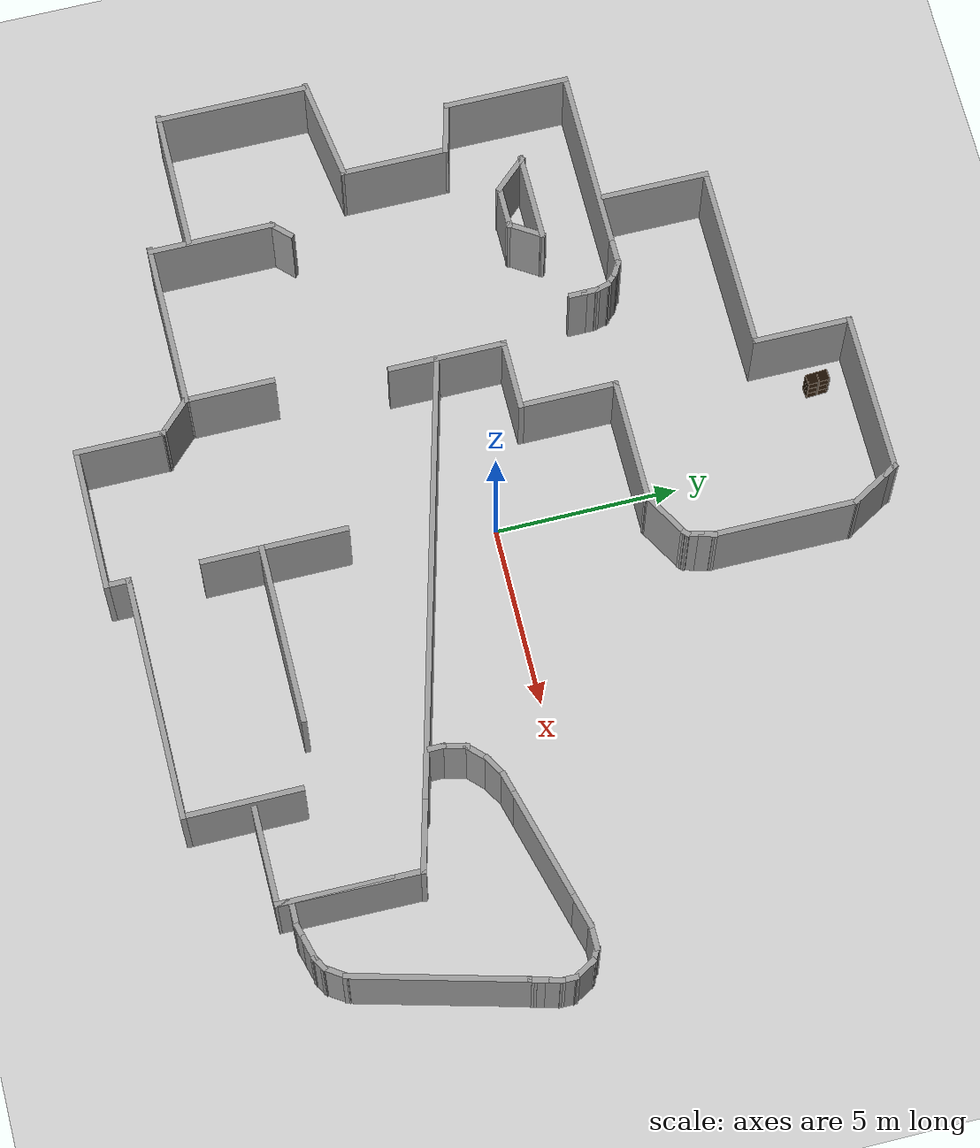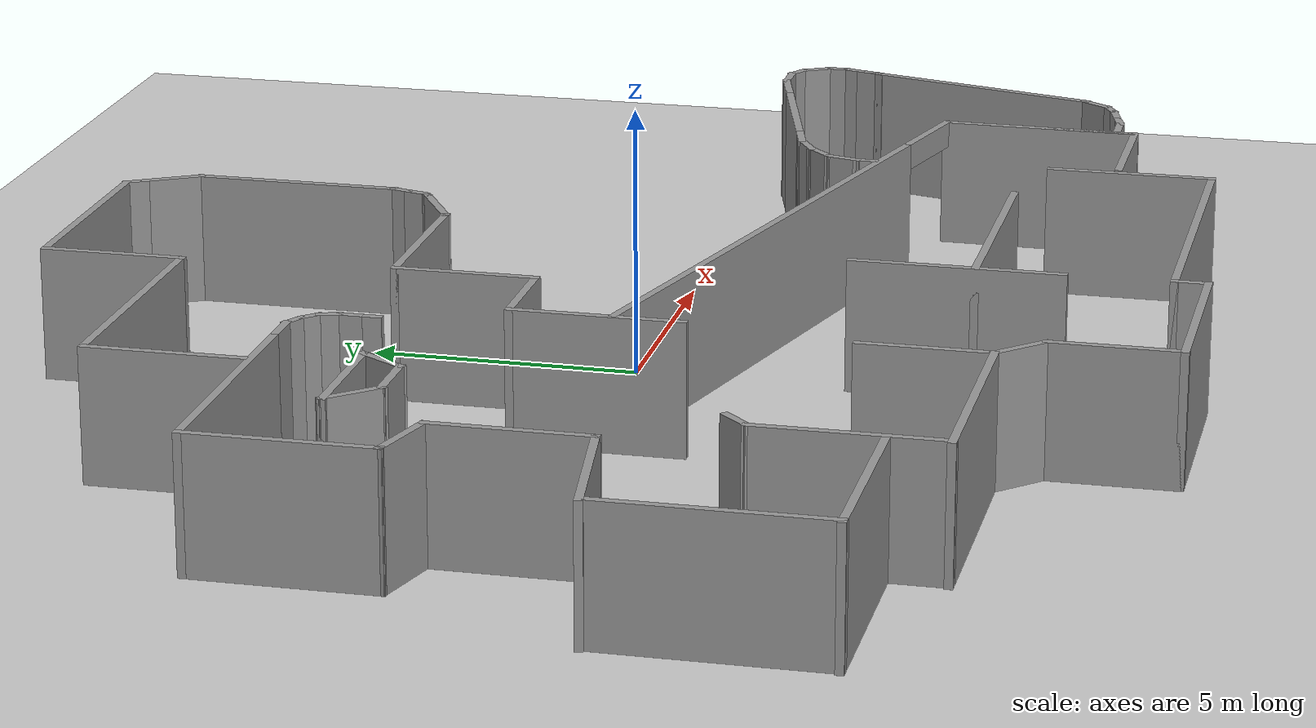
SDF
<sdf version="1.6">
 <world name="my_map">
  <include><uri>model://sun</uri></include>
  <include><uri>model://ground_plane</uri></include>
  <model name="6_Cube_StorageE">
   <link name="Wall_0">
    <pose>0 0 0.01 0 -0 0</pose>
    <inertial>
     <mass>1.6201</mass>
     <inertia><ixx>0.0119</ixx><iyy>0.0631</iyy><izz>0.0513</izz><ixy>0</ixy><ixz>0</ixz><iyz>0</iyz></inertia>
    </inertial>
    <collision name="Wall_0_Collision"><geometry><box><size>0.616 0.296 0.02</size></box></geometry></collision>
    <visual name="Wall_0_Visual">
     <geometry><box><size>0.616 0.296 0.02</size></box></geometry>
     <material>
      <script><uri>file://media/materials/scripts/gazebo.material</uri><name>Gazebo/Grey</name></script>
      <ambient>0.105882 0.0509804 0 1</ambient>
     </material>
    </visual>
   </link>
   <joint type="fixed" name="0_2">
    <pose>-0.308 0 0 0 0 0</pose>
    <parent>Wall_2</parent>
    <child>Wall_0</child>
    <axis><xyz>1 0 0</xyz></axis>
   </joint>
   <joint type="fixed" name="0_12">
    <parent>Wall_12</parent>
    <child>Wall_0</child>
    <axis><xyz>0 0 1</xyz></axis>
   </joint>
   <joint type="fixed" name="0_4">
    <pose>0.308 0 0 0 0 0</pose>
    <parent>Wall_4</parent>
    <child>Wall_0</child>
    <axis><xyz>1 0 0</xyz></axis>
   </joint>
   <link name="Wall_10">
    <pose>0 0 0.610 0 0 0</pose>
    <inertial>
     <mass>1.6201</mass>
     <inertia><ixx>0.0119</ixx><iyy>0.0631</iyy><izz>0.0513</izz><ixy>0</ixy><ixz>0</ixz><iyz>0</iyz></inertia>
    </inertial>
    <collision name="Wall_10_Collision"><geometry><box><size>0.616 0.296 0.02</size></box></geometry></collision>
    <visual name="Wall_10_Visual">
     <geometry><box><size>0.616 0.296 0.02</size></box></geometry>
     <material>
      <script><uri>file://media/materials/scripts/gazebo.material</uri><name>Gazebo/Grey</name></script>
      <ambient>0.105882 0.0509804 0 1</ambient>
     </material>
    </visual>
   </link>
   <joint type="fixed" name="10_2">
    <pose>-0.308 0 0 0 0 0</pose>
    <parent>Wall_2</parent>
    <child>Wall_10</child>
    <axis><xyz>1 0 0</xyz></axis>
   </joint>
   <joint type="fixed" name="10_12">
    <parent>Wall_12</parent>
    <child>Wall_10</child>
    <axis><xyz>0 0 1</xyz></axis>
   </joint>
   <joint type="fixed" name="10_4">
    <pose>0.308 0 0 0 0 0</pose>
    <parent>Wall_4</parent>
    <child>Wall_10</child>
    <axis><xyz>1 0 0</xyz></axis>
   </joint>
   <link name="Wall_12">
    <pose>0 0 0.4575 0 0 0</pose>
    <inertial>
     <mass>2.4065</mass>
     <inertia><ixx>0.0177</ixx><iyy>0.1855</iyy><izz>0.1680</izz><ixy>0</ixy><ixz>0</ixz><iyz>0</iyz></inertia>
    </inertial>
    <collision name="Wall_12_Collision"><geometry><box><size>0.02 0.296 0.915</size></box></geometry></collision>
    <visual name="Wall_12_Visual">
     <geometry><box><size>0.02 0.296 0.915</size></box></geometry>
     <material>
      <script><uri>file://media/materials/scripts/gazebo.material</uri><name>Gazebo/Grey</name></script>
      <ambient>0.105882 0.0509804 0 1</ambient>
     </material>
    </visual>
   </link>
   <link name="Wall_2">
    <pose>-0.298 0 0.4575 0 0 0</pose>
    <inertial>
     <mass>2.4065</mass>
     <inertia><ixx>0.0177</ixx><iyy>0.1855</iyy><izz>0.1680</izz><ixy>0</ixy><ixz>0</ixz><iyz>0</iyz></inertia>
    </inertial>
    <collision name="Wall_2_Collision"><geometry><box><size>0.02 0.296 0.915</size></box></geometry></collision>
    <visual name="Wall_2_Visual">
     <geometry><box><size>0.02 0.296 0.915</size></box></geometry>
     <material>
      <script><uri>file://media/materials/scripts/gazebo.material</uri><name>Gazebo/Grey</name></script>
      <ambient>0.105882 0.0509804 0 1</ambient>
     </material>
    </visual>
   </link>
   <link name="Wall_4">
    <pose>0.298 0 0.4575 0 0 0</pose>
    <inertial>
     <mass>2.4065</mass>
     <inertia><ixx>0.0177</ixx><iyy>0.1855</iyy><izz>0.1680</izz><ixy>0</ixy><ixz>0</ixz><iyz>0</iyz></inertia>
    </inertial>
    <collision name="Wall_4_Collision"><geometry><box><size>0.02 0.296 0.915</size></box></geometry></collision>
    <visual name="Wall_4_Visual">
     <geometry><box><size>0.02 0.296 0.915</size></box></geometry>
     <material>
      <script><uri>file://media/materials/scripts/gazebo.material</uri><name>Gazebo/Grey</name></script>
      <ambient>0.105882 0.0509804 0 1</ambient>
     </material>
    </visual>
   </link>
   <link name="Wall_6">
    <pose>0 0 0.905 0 0 0</pose>
    <inertial>
     <mass>1.6201</mass>
     <inertia><ixx>0.0119</ixx><iyy>0.0631</iyy><izz>0.0513</izz><ixy>0</ixy><ixz>0</ixz><iyz>0</iyz></inertia>
    </inertial>
    <collision name="Wall_6_Collision"><geometry><box><size>0.616 0.296 0.02</size></box></geometry></collision>
    <visual name="Wall_6_Visual">
     <geometry><box><size>0.616 0.296 0.02</size></box></geometry>
     <material>
      <script><uri>file://media/materials/scripts/gazebo.material</uri><name>Gazebo/Grey</name></script>
      <ambient>0.105882 0.0509804 0 1</ambient>
     </material>
    </visual>
   </link>
   <joint type="fixed" name="6_2">
    <pose>-0.308 0 0 0 0 0</pose>
    <parent>Wall_2</parent>
    <child>Wall_6</child>
    <axis><xyz>2 0 0</xyz></axis>
   </joint>
   <joint type="fixed" name="6_12">
    <parent>Wall_12</parent>
    <child>Wall_6</child>
    <axis><xyz>0 0 1</xyz></axis>
   </joint>
   <joint type="fixed" name="6_4">
    <pose>0.308 0 0 0 0 0</pose>
    <parent>Wall_4</parent>
    <child>Wall_6</child>
    <axis><xyz>1 0 0</xyz></axis>
   </joint>
   <link name="Wall_8">
    <pose>0 0 0.305 0 0 0</pose>
    <inertial>
     <mass>1.6201</mass>
     <inertia><ixx>0.0119</ixx><iyy>0.0631</iyy><izz>0.0513</izz><ixy>0</ixy><ixz>0</ixz><iyz>0</iyz></inertia>
    </inertial>
    <collision name="Wall_8_Collision"><geometry><box><size>0.616 0.296 0.02</size></box></geometry></collision>
    <visual name="Wall_8_Visual">
     <geometry><box><size>0.616 0.296 0.02</size></box></geometry>
     <material>
      <script><uri>file://media/materials/scripts/gazebo.material</uri><name>Gazebo/Grey</name></script>
      <ambient>0.105882 0.0509804 0 1</ambient>
     </material>
    </visual>
   </link>
   <joint type="fixed" name="8_2">
    <pose>-0.308 0 0 0 0 0</pose>
    <parent>Wall_2</parent>
    <child>Wall_8</child>
    <axis><xyz>1 0 0</xyz></axis>
   </joint>
   <joint type="fixed" name="8_12">
    <parent>Wall_12</parent>
    <child>Wall_8</child>
    <axis><xyz>0 0 1</xyz></axis>
   </joint>
   <joint type="fixed" name="8_4">
    <pose>0.308 0 0 0 0 0</pose>
    <parent>Wall_4</parent>
    <child>Wall_8</child>
    <axis><xyz>1 0 0</xyz></axis>
   </joint>
   <static>1</static>
   <pose>-1.922144 9.434461 0 0 0 -1.512023</pose>
  </model>
  <model name="my_map">
   <link name="Wall_0">
    <pose>2.62324 -2.40714 0 0 -0 -0.261799</pose>
    <visual name="Wall_0_Visual_0">
     <pose>-0.993806 0 1.25 0 -0 0</pose>
     <geometry><box><size>12.2624 0.15 2.5</size></box></geometry>
     <material>
      <script><uri>file://media/materials/scripts/gazebo.material</uri><name>Gazebo/Grey</name></script>
      <ambient>1 1 1 1</ambient>
     </material>
     <meta><layer>0</layer></meta>
    </visual>
    <collision name="Wall_0_Collision_0">
     <geometry><box><size>12.2624 0.15 2.5</size></box></geometry>
     <pose>-0.993806 0 1.25 0 -0 0</pose>
    </collision>
    <visual name="Wall_0_Visual_1">
     <pose>7.1096 0 1.25 0 -0 0</pose>
     <geometry><box><size>0.0308 0.15 2.5</size></box></geometry>
     <material>
      <script><uri>file://media/materials/scripts/gazebo.material</uri><name>Gazebo/Grey</name></script>
      <ambient>1 1 1 1</ambient>
     </material>
     <meta><layer>0</layer></meta>
    </visual>
    <collision name="Wall_0_Collision_1">
     <geometry><box><size>0.0308 0.15 2.5</size></box></geometry>
     <pose>7.1096 0 1.25 0 -0 0</pose>
    </collision>
    <visual name="Wall_0_Visual_2">
     <pose>6.11579 0 2.25 0 -0 0</pose>
     <geometry><box><size>1.95681 0.15 0.5</size></box></geometry>
     <material>
      <script><uri>file://media/materials/scripts/gazebo.material</uri><name>Gazebo/Grey</name></script>
      <ambient>1 1 1 1</ambient>
     </material>
     <meta><layer>0</layer></meta>
    </visual>
    <collision name="Wall_0_Collision_2">
     <geometry><box><size>1.95681 0.15 0.5</size></box></geometry>
     <pose>6.11579 0 2.25 0 -0 0</pose>
    </collision>
   </link>
   <link name="Wall_10">
    <collision name="Wall_10_Collision">
     <geometry><box><size>1.25 0.15 2.5</size></box></geometry>
     <pose>0 0 1.25 0 -0 0</pose>
    </collision>
    <visual name="Wall_10_Visual">
     <pose>0 0 1.25 0 -0 0</pose>
     <geometry><box><size>1.25 0.15 2.5</size></box></geometry>
     <material>
      <script><uri>file://media/materials/scripts/gazebo.material</uri><name>Gazebo/Grey</name></script>
      <ambient>1 1 1 1</ambient>
     </material>
     <meta><layer>0</layer></meta>
    </visual>
    <pose>-4.28459 -7.68949 0 0 -0 2.35619</pose>
   </link>
   <link name="Wall_11">
    <collision name="Wall_11_Collision">
     <geometry><box><size>2.5 0.15 2.5</size></box></geometry>
     <pose>0 0 1.25 0 -0 0</pose>
    </collision>
    <visual name="Wall_11_Visual">
     <pose>0 0 1.25 0 -0 0</pose>
     <geometry><box><size>2.5 0.15 2.5</size></box></geometry>
     <material>
      <script><uri>file://media/materials/scripts/gazebo.material</uri><name>Gazebo/Grey</name></script>
      <ambient>1 1 1 1</ambient>
     </material>
     <meta><layer>0</layer></meta>
    </visual>
    <pose>-4.6735 -6.12558 0 0 -0 1.5708</pose>
   </link>
   <link name="Wall_13">
    <collision name="Wall_13_Collision">
     <geometry><box><size>4.67041 0.15 2.5</size></box></geometry>
     <pose>0 0 1.25 0 -0 0</pose>
    </collision>
    <visual name="Wall_13_Visual">
     <pose>0 0 1.25 0 -0 0</pose>
     <geometry><box><size>4.67041 0.15 2.5</size></box></geometry>
     <material>
      <script><uri>file://media/materials/scripts/gazebo.material</uri><name>Gazebo/Grey</name></script>
      <ambient>1 1 1 1</ambient>
     </material>
     <meta><layer>0</layer></meta>
    </visual>
    <pose>-6.9337 -7.30058 0 0 -0 3.14159</pose>
   </link>
   <link name="Wall_14">
    <collision name="Wall_14_Collision">
     <geometry><box><size>3.5 0.15 2.5</size></box></geometry>
     <pose>0 0 1.25 0 -0 0</pose>
    </collision>
    <visual name="Wall_14_Visual">
     <pose>0 0 1.25 0 -0 0</pose>
     <geometry><box><size>3.5 0.15 2.5</size></box></geometry>
     <material>
      <script><uri>file://media/materials/scripts/gazebo.material</uri><name>Gazebo/Grey</name></script>
      <ambient>1 1 1 1</ambient>
     </material>
     <meta><layer>0</layer></meta>
    </visual>
    <pose>-9.14071 -5.62558 0 0 -0 1.5708</pose>
   </link>
   <link name="Wall_16">
    <collision name="Wall_16_Collision">
     <geometry><box><size>4.02681 0.15 2.5</size></box></geometry>
     <pose>0 0 1.25 0 -0 0</pose>
    </collision>
    <visual name="Wall_16_Visual">
     <pose>0 0 1.25 0 -0 0</pose>
     <geometry><box><size>4.02681 0.15 2.5</size></box></geometry>
     <material>
      <script><uri>file://media/materials/scripts/gazebo.material</uri><name>Gazebo/Grey</name></script>
      <ambient>1 1 1 1</ambient>
     </material>
     <meta><layer>0</layer></meta>
    </visual>
    <pose>-11.0888 -6.2359 0 0 -0 3.14159</pose>
   </link>
   <link name="Wall_17">
    <collision name="Wall_17_Collision">
     <geometry><box><size>4.25 0.15 2.5</size></box></geometry>
     <pose>0 0 1.25 0 -0 0</pose>
    </collision>
    <visual name="Wall_17_Visual">
     <pose>0 0 1.25 0 -0 0</pose>
     <geometry><box><size>4.25 0.15 2.5</size></box></geometry>
     <material>
      <script><uri>file://media/materials/scripts/gazebo.material</uri><name>Gazebo/Grey</name></script>
      <ambient>1 1 1 1</ambient>
     </material>
     <meta><layer>0</layer></meta>
    </visual>
    <pose>-12.974 -4.1859 0 0 -0 1.5708</pose>
   </link>
   <link name="Wall_18">
    <collision name="Wall_18_Collision">
     <geometry><box><size>3.00251 0.15 2.5</size></box></geometry>
     <pose>0 0 1.25 0 -0 0</pose>
    </collision>
    <visual name="Wall_18_Visual">
     <pose>0 0 1.25 0 -0 0</pose>
     <geometry><box><size>3.00251 0.15 2.5</size></box></geometry>
     <material>
      <script><uri>file://media/materials/scripts/gazebo.material</uri><name>Gazebo/Grey</name></script>
      <ambient>1 1 1 1</ambient>
     </material>
     <meta><layer>0</layer></meta>
    </visual>
    <pose>-11.6161 -1.92884 0 0 -0 0.145689</pose>
   </link>
   <link name="Wall_19">
    <collision name="Wall_19_Collision">
     <geometry><box><size>3 0.15 2.5</size></box></geometry>
     <pose>0 0 1.25 0 -0 0</pose>
    </collision>
    <visual name="Wall_19_Visual">
     <pose>0 0 1.25 0 -0 0</pose>
     <geometry><box><size>3 0.15 2.5</size></box></geometry>
     <material>
      <script><uri>file://media/materials/scripts/gazebo.material</uri><name>Gazebo/Grey</name></script>
      <ambient>1 1 1 1</ambient>
     </material>
     <meta><layer>0</layer></meta>
    </visual>
    <pose>-10.2049 -0.296788 0 0 -0 1.5708</pose>
   </link>
   <link name="Wall_2">
    <pose>9.39804 -6.12184 0 0 -0 -1.58005</pose>
    <visual name="Wall_2_Visual_0">
     <pose>0 0 1.25 0 -0 0</pose>
     <geometry><box><size>3.9304 0.15 2.5</size></box></geometry>
     <material>
      <script><uri>file://media/materials/scripts/gazebo.material</uri><name>Gazebo/Grey</name></script>
      <ambient>1 1 1 1</ambient>
     </material>
     <meta><layer>0</layer></meta>
    </visual>
    <collision name="Wall_2_Collision_0">
     <geometry><box><size>3.9304 0.15 2.5</size></box></geometry>
     <pose>0 0 1.25 0 -0 0</pose>
    </collision>
    <visual name="Wall_2_Visual_1">
     <pose>0.405543 0 1.25 0 -0 0</pose>
     <geometry><box><size>3.11932 0.15 2.5</size></box></geometry>
     <material>
      <script><uri>file://media/materials/scripts/gazebo.material</uri><name>Gazebo/Grey</name></script>
      <ambient>1 1 1 1</ambient>
     </material>
     <meta><layer>0</layer></meta>
    </visual>
    <collision name="Wall_2_Collision_1">
     <geometry><box><size>3.11932 0.15 2.5</size></box></geometry>
     <pose>0.405543 0 1.25 0 -0 0</pose>
    </collision>
   </link>
   <link name="Wall_20">
    <collision name="Wall_20_Collision">
     <geometry><box><size>1.5 0.15 2.5</size></box></geometry>
     <pose>0 0 1.25 0 -0 0</pose>
    </collision>
    <visual name="Wall_20_Visual">
     <pose>0 0 1.25 0 -0 0</pose>
     <geometry><box><size>1.5 0.15 2.5</size></box></geometry>
     <material>
      <script><uri>file://media/materials/scripts/gazebo.material</uri><name>Gazebo/Grey</name></script>
      <ambient>1 1 1 1</ambient>
     </material>
     <meta><layer>0</layer></meta>
    </visual>
    <pose>-10.8569 1.30292 0 0 -0 2.87979</pose>
   </link>
   <link name="Wall_21">
    <collision name="Wall_21_Collision">
     <geometry><box><size>3.5 0.15 2.5</size></box></geometry>
     <pose>0 0 1.25 0 -0 0</pose>
    </collision>
    <visual name="Wall_21_Visual">
     <pose>0 0 1.25 0 -0 0</pose>
     <geometry><box><size>3.5 0.15 2.5</size></box></geometry>
     <material>
      <script><uri>file://media/materials/scripts/gazebo.material</uri><name>Gazebo/Grey</name></script>
      <ambient>1 1 1 1</ambient>
     </material>
     <meta><layer>0</layer></meta>
    </visual>
    <pose>-11.5089 3.15262 0 0 -0 1.5708</pose>
   </link>
   <link name="Wall_22">
    <collision name="Wall_22_Collision">
     <geometry><box><size>5.25 0.15 2.5</size></box></geometry>
     <pose>0 0 1.25 0 -0 0</pose>
    </collision>
    <visual name="Wall_22_Visual">
     <pose>0 0 1.25 0 -0 0</pose>
     <geometry><box><size>5.25 0.15 2.5</size></box></geometry>
     <material>
      <script><uri>file://media/materials/scripts/gazebo.material</uri><name>Gazebo/Grey</name></script>
      <ambient>1 1 1 1</ambient>
     </material>
     <meta><layer>0</layer></meta>
    </visual>
    <pose>-8.95892 4.82762 0 0 -0 0</pose>
   </link>
   <link name="Wall_24">
    <collision name="Wall_24_Collision">
     <geometry><box><size>3 0.15 2.5</size></box></geometry>
     <pose>0 0 1.25 0 -0 0</pose>
    </collision>
    <visual name="Wall_24_Visual">
     <pose>0 0 1.25 0 -0 0</pose>
     <geometry><box><size>3 0.15 2.5</size></box></geometry>
     <material>
      <script><uri>file://media/materials/scripts/gazebo.material</uri><name>Gazebo/Grey</name></script>
      <ambient>1 1 1 1</ambient>
     </material>
     <meta><layer>0</layer></meta>
    </visual>
    <pose>-7.79862 6.37595 0 0 -0 1.5708</pose>
   </link>
   <link name="Wall_25">
    <collision name="Wall_25_Collision">
     <geometry><box><size>5.25 0.15 2.5</size></box></geometry>
     <pose>0 0 1.25 0 -0 0</pose>
    </collision>
    <visual name="Wall_25_Visual">
     <pose>0 0 1.25 0 -0 0</pose>
     <geometry><box><size>5.25 0.15 2.5</size></box></geometry>
     <material>
      <script><uri>file://media/materials/scripts/gazebo.material</uri><name>Gazebo/Grey</name></script>
      <ambient>1 1 1 1</ambient>
     </material>
     <meta><layer>0</layer></meta>
    </visual>
    <pose>-5.24862 7.80095 0 0 -0 0</pose>
   </link>
   <link name="Wall_26">
    <collision name="Wall_26_Collision">
     <geometry><box><size>2.75 0.15 2.5</size></box></geometry>
     <pose>0 0 1.25 0 -0 0</pose>
    </collision>
    <visual name="Wall_26_Visual">
     <pose>0 0 1.25 0 -0 0</pose>
     <geometry><box><size>2.75 0.15 2.5</size></box></geometry>
     <material>
      <script><uri>file://media/materials/scripts/gazebo.material</uri><name>Gazebo/Grey</name></script>
      <ambient>1 1 1 1</ambient>
     </material>
     <meta><layer>0</layer></meta>
    </visual>
    <pose>-2.69862 9.10095 0 0 -0 1.5708</pose>
   </link>
   <link name="Wall_27">
    <collision name="Wall_27_Collision">
     <geometry><box><size>4.5 0.15 2.5</size></box></geometry>
     <pose>0 0 1.25 0 -0 0</pose>
    </collision>
    <visual name="Wall_27_Visual">
     <pose>0 0 1.25 0 -0 0</pose>
     <geometry><box><size>4.5 0.15 2.5</size></box></geometry>
     <material>
      <script><uri>file://media/materials/scripts/gazebo.material</uri><name>Gazebo/Grey</name></script>
      <ambient>1 1 1 1</ambient>
     </material>
     <meta><layer>0</layer></meta>
    </visual>
    <pose>-0.523618 10.4009 0 0 -0 0</pose>
   </link>
   <link name="Wall_28">
    <collision name="Wall_28_Collision">
     <geometry><box><size>0.5 0.15 2.5</size></box></geometry>
     <pose>0 0 1.25 0 -0 0</pose>
    </collision>
    <visual name="Wall_28_Visual">
     <pose>0 0 1.25 0 -0 0</pose>
     <geometry><box><size>0.5 0.15 2.5</size></box></geometry>
     <material>
      <script><uri>file://media/materials/scripts/gazebo.material</uri><name>Gazebo/Grey</name></script>
      <ambient>1 1 1 1</ambient>
     </material>
     <meta><layer>0</layer></meta>
    </visual>
    <pose>1.73888 10.2494 0 0 -0 -1.0472</pose>
   </link>
   <link name="Wall_29">
    <collision name="Wall_29_Collision">
     <geometry><box><size>1.25 0.15 2.5</size></box></geometry>
     <pose>0 0 1.25 0 -0 0</pose>
    </collision>
    <visual name="Wall_29_Visual">
     <pose>0 0 1.25 0 -0 0</pose>
     <geometry><box><size>1.25 0.15 2.5</size></box></geometry>
     <material>
      <script><uri>file://media/materials/scripts/gazebo.material</uri><name>Gazebo/Grey</name></script>
      <ambient>1 1 1 1</ambient>
     </material>
     <meta><layer>0</layer></meta>
    </visual>
    <pose>2.10138 9.62153 0 0 -0 -1.0472</pose>
   </link>
   <link name="Wall_3">
    <collision name="Wall_3_Collision">
     <geometry><box><size>2.75 0.15 2.5</size></box></geometry>
     <pose>0 0 1.25 0 -0 0</pose>
    </collision>
    <visual name="Wall_3_Visual">
     <pose>0 0 1.25 0 -0 0</pose>
     <geometry><box><size>2.75 0.15 2.5</size></box></geometry>
     <material>
      <script><uri>file://media/materials/scripts/gazebo.material</uri><name>Gazebo/Grey</name></script>
      <ambient>1 1 1 1</ambient>
     </material>
     <meta><layer>0</layer></meta>
    </visual>
    <pose>8.08055 -8.01186 0 0 -0 3.14159</pose>
   </link>
   <link name="Wall_31">
    <collision name="Wall_31_Collision">
     <geometry><box><size>4 0.15 2.5</size></box></geometry>
     <pose>0 0 1.25 0 -0 0</pose>
    </collision>
    <visual name="Wall_31_Visual">
     <pose>0 0 1.25 0 -0 0</pose>
     <geometry><box><size>4 0.15 2.5</size></box></geometry>
     <material>
      <script><uri>file://media/materials/scripts/gazebo.material</uri><name>Gazebo/Grey</name></script>
      <ambient>1 1 1 1</ambient>
     </material>
     <meta><layer>0</layer></meta>
    </visual>
    <pose>2.37638 7.22021 0 0 -0 -1.5708</pose>
   </link>
   <link name="Wall_32">
    <collision name="Wall_32_Collision">
     <geometry><box><size>0.5 0.15 2.5</size></box></geometry>
     <pose>0 0 1.25 0 -0 0</pose>
    </collision>
    <visual name="Wall_32_Visual">
     <pose>0 0 1.25 0 -0 0</pose>
     <geometry><box><size>0.5 0.15 2.5</size></box></geometry>
     <material>
      <script><uri>file://media/materials/scripts/gazebo.material</uri><name>Gazebo/Grey</name></script>
      <ambient>1 1 1 1</ambient>
     </material>
     <meta><layer>0</layer></meta>
    </visual>
    <pose>2.33109 5.12617 0 0 -0 -1.8326</pose>
   </link>
   <link name="Wall_33">
    <collision name="Wall_33_Collision">
     <geometry><box><size>0.5 0.15 2.5</size></box></geometry>
     <pose>0 0 1.25 0 -0 0</pose>
    </collision>
    <visual name="Wall_33_Visual">
     <pose>0 0 1.25 0 -0 0</pose>
     <geometry><box><size>0.5 0.15 2.5</size></box></geometry>
     <material>
      <script><uri>file://media/materials/scripts/gazebo.material</uri><name>Gazebo/Grey</name></script>
      <ambient>1 1 1 1</ambient>
     </material>
     <meta><layer>0</layer></meta>
    </visual>
    <pose>2.2405 4.7881 0 0 -0 -1.8326</pose>
   </link>
   <link name="Wall_34">
    <collision name="Wall_34_Collision">
     <geometry><box><size>0.25 0.15 2.5</size></box></geometry>
     <pose>0 0 1.25 0 -0 0</pose>
    </collision>
    <visual name="Wall_34_Visual">
     <pose>0 0 1.25 0 -0 0</pose>
     <geometry><box><size>0.25 0.15 2.5</size></box></geometry>
     <material>
      <script><uri>file://media/materials/scripts/gazebo.material</uri><name>Gazebo/Grey</name></script>
      <ambient>1 1 1 1</ambient>
     </material>
     <meta><layer>0</layer></meta>
    </visual>
    <pose>2.15985 4.58371 0 0 -0 -2.35619</pose>
   </link>
   <link name="Wall_35">
    <collision name="Wall_35_Collision">
     <geometry><box><size>1.5 0.15 2.5</size></box></geometry>
     <pose>0 0 1.25 0 -0 0</pose>
    </collision>
    <visual name="Wall_35_Visual">
     <pose>0 0 1.25 0 -0 0</pose>
     <geometry><box><size>1.5 0.15 2.5</size></box></geometry>
     <material>
      <script><uri>file://media/materials/scripts/gazebo.material</uri><name>Gazebo/Grey</name></script>
      <ambient>1 1 1 1</ambient>
     </material>
     <meta><layer>0</layer></meta>
    </visual>
    <pose>1.53993 4.21085 0 0 -0 -2.61799</pose>
   </link>
   <link name="Wall_36">
    <collision name="Wall_36_Collision">
     <geometry><box><size>3.5 0.15 2.5</size></box></geometry>
     <pose>0 0 1.25 0 -0 0</pose>
    </collision>
    <visual name="Wall_36_Visual">
     <pose>0 0 1.25 0 -0 0</pose>
     <geometry><box><size>3.5 0.15 2.5</size></box></geometry>
     <material>
      <script><uri>file://media/materials/scripts/gazebo.material</uri><name>Gazebo/Grey</name></script>
      <ambient>1 1 1 1</ambient>
     </material>
     <meta><layer>0</layer></meta>
    </visual>
    <pose>-0.719636 3.87335 0 0 -0 3.14159</pose>
   </link>
   <link name="Wall_37">
    <collision name="Wall_37_Collision">
     <geometry><box><size>2.75 0.15 2.5</size></box></geometry>
     <pose>0 0 1.25 0 -0 0</pose>
    </collision>
    <visual name="Wall_37_Visual">
     <pose>0 0 1.25 0 -0 0</pose>
     <geometry><box><size>2.75 0.15 2.5</size></box></geometry>
     <material>
      <script><uri>file://media/materials/scripts/gazebo.material</uri><name>Gazebo/Grey</name></script>
      <ambient>1 1 1 1</ambient>
     </material>
     <meta><layer>0</layer></meta>
    </visual>
    <pose>-2.39464 2.57335 0 0 -0 -1.5708</pose>
   </link>
   <link name="Wall_38">
    <collision name="Wall_38_Collision">
     <geometry><box><size>2 0.15 2.5</size></box></geometry>
     <pose>0 0 1.25 0 -0 0</pose>
    </collision>
    <visual name="Wall_38_Visual">
     <pose>0 0 1.25 0 -0 0</pose>
     <geometry><box><size>2 0.15 2.5</size></box></geometry>
     <material>
      <script><uri>file://media/materials/scripts/gazebo.material</uri><name>Gazebo/Grey</name></script>
      <ambient>1 1 1 1</ambient>
     </material>
     <meta><layer>0</layer></meta>
    </visual>
    <pose>-3.31964 1.27335 0 0 -0 3.14159</pose>
   </link>
   <link name="Wall_39">
    <collision name="Wall_39_Collision">
     <geometry><box><size>3.25 0.15 2.5</size></box></geometry>
     <pose>0 0 1.25 0 -0 0</pose>
    </collision>
    <visual name="Wall_39_Visual">
     <pose>0 0 1.25 0 -0 0</pose>
     <geometry><box><size>3.25 0.15 2.5</size></box></geometry>
     <material>
      <script><uri>file://media/materials/scripts/gazebo.material</uri><name>Gazebo/Grey</name></script>
      <ambient>1 1 1 1</ambient>
     </material>
     <meta><layer>0</layer></meta>
    </visual>
    <pose>-4.24464 -0.276647 0 0 -0 -1.5708</pose>
   </link>
   <link name="Wall_41">
    <collision name="Wall_41_Collision">
     <geometry><box><size>4 0.15 2.5</size></box></geometry>
     <pose>0 0 1.25 0 -0 0</pose>
    </collision>
    <visual name="Wall_41_Visual">
     <pose>0 0 1.25 0 -0 0</pose>
     <geometry><box><size>4 0.15 2.5</size></box></geometry>
     <material>
      <script><uri>file://media/materials/scripts/gazebo.material</uri><name>Gazebo/Grey</name></script>
      <ambient>1 1 1 1</ambient>
     </material>
     <meta><layer>0</layer></meta>
    </visual>
    <pose>-0.092762 -5.93324 0 0 -0 -1.5708</pose>
   </link>
   <link name="Wall_43">
    <collision name="Wall_43_Collision">
     <geometry><box><size>5 0.15 2.5</size></box></geometry>
     <pose>0 0 1.25 0 -0 0</pose>
    </collision>
    <visual name="Wall_43_Visual">
     <pose>0 0 1.25 0 -0 0</pose>
     <geometry><box><size>5 0.15 2.5</size></box></geometry>
     <material>
      <script><uri>file://media/materials/scripts/gazebo.material</uri><name>Gazebo/Grey</name></script>
      <ambient>1 1 1 1</ambient>
     </material>
     <meta><layer>0</layer></meta>
    </visual>
    <pose>2.33224 -6.26925 0 0 -0 0</pose>
   </link>
   <link name="Wall_45">
    <collision name="Wall_45_Collision">
     <geometry><box><size>1.23863 0.15 2.5</size></box></geometry>
     <pose>0 0 1.25 0 -0 0</pose>
    </collision>
    <visual name="Wall_45_Visual">
     <pose>0 0 1.25 0 -0 0</pose>
     <geometry><box><size>1.23863 0.15 2.5</size></box></geometry>
     <material>
      <script><uri>file://media/materials/scripts/gazebo.material</uri><name>Gazebo/Grey</name></script>
      <ambient>1 1 1 1</ambient>
     </material>
     <meta><layer>0</layer></meta>
    </visual>
    <pose>-9.07452 2.67139 0 0 -0 -0.830422</pose>
   </link>
   <link name="Wall_46">
    <collision name="Wall_46_Collision">
     <geometry><box><size>1.25 0.15 2.5</size></box></geometry>
     <pose>0 0 1.25 0 -0 0</pose>
    </collision>
    <visual name="Wall_46_Visual">
     <pose>0 0 1.25 0 -0 0</pose>
     <geometry><box><size>1.25 0.15 2.5</size></box></geometry>
     <material>
      <script><uri>file://media/materials/scripts/gazebo.material</uri><name>Gazebo/Grey</name></script>
      <ambient>1 1 1 1</ambient>
     </material>
     <meta><layer>0</layer></meta>
    </visual>
    <pose>-8.13995 2.26957 0 0 -0 0</pose>
   </link>
   <link name="Wall_47">
    <collision name="Wall_47_Collision">
     <geometry><box><size>1.10485 0.15 2.5</size></box></geometry>
     <pose>0 0 1.25 0 -0 0</pose>
    </collision>
    <visual name="Wall_47_Visual">
     <pose>0 0 1.25 0 -0 0</pose>
     <geometry><box><size>1.10485 0.15 2.5</size></box></geometry>
     <material>
      <script><uri>file://media/materials/scripts/gazebo.material</uri><name>Gazebo/Grey</name></script>
      <ambient>1 1 1 1</ambient>
     </material>
     <meta><layer>0</layer></meta>
    </visual>
    <pose>-7.34952 2.67139 0 0 -0 1.00032</pose>
   </link>
   <link name="Wall_48">
    <collision name="Wall_48_Collision">
     <geometry><box><size>2.5 0.15 2.5</size></box></geometry>
     <pose>0 0 1.25 0 -0 0</pose>
    </collision>
    <visual name="Wall_48_Visual">
     <pose>0 0 1.25 0 -0 0</pose>
     <geometry><box><size>2.5 0.15 2.5</size></box></geometry>
     <material>
      <script><uri>file://media/materials/scripts/gazebo.material</uri><name>Gazebo/Grey</name></script>
      <ambient>1 1 1 1</ambient>
     </material>
     <meta><layer>0</layer></meta>
    </visual>
    <pose>-8.28409 3.05583 0 0 -0 3.14159</pose>
   </link>
   <link name="Wall_5">
    <collision name="Wall_5_Collision">
     <geometry><box><size>3.25 0.15 2.5</size></box></geometry>
     <pose>0 0 1.25 0 -0 0</pose>
    </collision>
    <visual name="Wall_5_Visual">
     <pose>0 0 1.25 0 -0 0</pose>
     <geometry><box><size>3.25 0.15 2.5</size></box></geometry>
     <material>
      <script><uri>file://media/materials/scripts/gazebo.material</uri><name>Gazebo/Grey</name></script>
      <ambient>1 1 1 1</ambient>
     </material>
     <meta><layer>0</layer></meta>
    </visual>
    <pose>6.55432 -8.2784 0 0 -0 -1.5708</pose>
   </link>
   <link name="Wall_50">
    <collision name="Wall_50_Collision">
     <geometry><box><size>0.75 0.15 2.5</size></box></geometry>
     <pose>0 0 1.25 0 -0 0</pose>
    </collision>
    <visual name="Wall_50_Visual">
     <pose>0 0 1.25 0 -0 0</pose>
     <geometry><box><size>0.75 0.15 2.5</size></box></geometry>
     <material>
      <script><uri>file://media/materials/scripts/gazebo.material</uri><name>Gazebo/Grey</name></script>
      <ambient>1 1 1 1</ambient>
     </material>
     <meta><layer>0</layer></meta>
    </visual>
    <pose>-8.92858 -3.73845 0 0 -0 0.785398</pose>
   </link>
   <link name="Wall_52">
    <collision name="Wall_52_Collision">
     <geometry><box><size>0.75 0.15 2.5</size></box></geometry>
     <pose>0 0 1.25 0 -0 0</pose>
    </collision>
    <visual name="Wall_52_Visual">
     <pose>0 0 1.25 0 -0 0</pose>
     <geometry><box><size>0.75 0.15 2.5</size></box></geometry>
     <material>
      <script><uri>file://media/materials/scripts/gazebo.material</uri><name>Gazebo/Grey</name></script>
      <ambient>1 1 1 1</ambient>
     </material>
     <meta><layer>0</layer></meta>
    </visual>
    <pose>-6.10892 4.82762 0 0 -0 0</pose>
   </link>
   <link name="Wall_53">
    <collision name="Wall_53_Collision">
     <geometry><box><size>0.5 0.15 2.5</size></box></geometry>
     <pose>0 0 1.25 0 -0 0</pose>
    </collision>
    <visual name="Wall_53_Visual">
     <pose>0 0 1.25 0 -0 0</pose>
     <geometry><box><size>0.5 0.15 2.5</size></box></geometry>
     <material>
      <script><uri>file://media/materials/scripts/gazebo.material</uri><name>Gazebo/Grey</name></script>
      <ambient>1 1 1 1</ambient>
     </material>
     <meta><layer>0</layer></meta>
    </visual>
    <pose>-5.65737 4.74012 0 0 -0 -0.523599</pose>
   </link>
   <link name="Wall_54">
    <collision name="Wall_54_Collision">
     <geometry><box><size>0.5 0.15 2.5</size></box></geometry>
     <pose>0 0 1.25 0 -0 0</pose>
    </collision>
    <visual name="Wall_54_Visual">
     <pose>0 0 1.25 0 -0 0</pose>
     <geometry><box><size>0.5 0.15 2.5</size></box></geometry>
     <material>
      <script><uri>file://media/materials/scripts/gazebo.material</uri><name>Gazebo/Grey</name></script>
      <ambient>1 1 1 1</ambient>
     </material>
     <meta><layer>0</layer></meta>
    </visual>
    <pose>-5.38207 4.52888 0 0 -0 -0.785398</pose>
   </link>
   <link name="Wall_55">
    <collision name="Wall_55_Collision">
     <geometry><box><size>0.5 0.15 2.5</size></box></geometry>
     <pose>0 0 1.25 0 -0 0</pose>
    </collision>
    <visual name="Wall_55_Visual">
     <pose>0 0 1.25 0 -0 0</pose>
     <geometry><box><size>0.5 0.15 2.5</size></box></geometry>
     <material>
      <script><uri>file://media/materials/scripts/gazebo.material</uri><name>Gazebo/Grey</name></script>
      <ambient>1 1 1 1</ambient>
     </material>
     <meta><layer>0</layer></meta>
    </visual>
    <pose>-5.21303 4.23609 0 0 -0 -1.309</pose>
   </link>
   <link name="Wall_56">
    <collision name="Wall_56_Collision">
     <geometry><box><size>0.5 0.15 2.5</size></box></geometry>
     <pose>0 0 1.25 0 -0 0</pose>
    </collision>
    <visual name="Wall_56_Visual">
     <pose>0 0 1.25 0 -0 0</pose>
     <geometry><box><size>0.5 0.15 2.5</size></box></geometry>
     <material>
      <script><uri>file://media/materials/scripts/gazebo.material</uri><name>Gazebo/Grey</name></script>
      <ambient>1 1 1 1</ambient>
     </material>
     <meta><layer>0</layer></meta>
    </visual>
    <pose>-5.16774 3.89206 0 0 -0 -1.5708</pose>
   </link>
   <link name="Wall_57">
    <collision name="Wall_57_Collision">
     <geometry><box><size>0.5 0.15 2.5</size></box></geometry>
     <pose>0 0 1.25 0 -0 0</pose>
    </collision>
    <visual name="Wall_57_Visual">
     <pose>0 0 1.25 0 -0 0</pose>
     <geometry><box><size>0.5 0.15 2.5</size></box></geometry>
     <material>
      <script><uri>file://media/materials/scripts/gazebo.material</uri><name>Gazebo/Grey</name></script>
      <ambient>1 1 1 1</ambient>
     </material>
     <meta><layer>0</layer></meta>
    </visual>
    <pose>-5.16774 3.54206 0 0 -0 -1.5708</pose>
   </link>
   <link name="Wall_59">
    <collision name="Wall_59_Collision">
     <geometry><box><size>0.5 0.15 2.5</size></box></geometry>
     <pose>0 0 1.25 0 -0 0</pose>
    </collision>
    <visual name="Wall_59_Visual">
     <pose>0 0 1.25 0 -0 0</pose>
     <geometry><box><size>0.5 0.15 2.5</size></box></geometry>
     <material>
      <script><uri>file://media/materials/scripts/gazebo.material</uri><name>Gazebo/Grey</name></script>
      <ambient>1 1 1 1</ambient>
     </material>
     <meta><layer>0</layer></meta>
    </visual>
    <pose>6.31261 -3.13138 0 0 -0 1.5708</pose>
   </link>
   <link name="Wall_6">
    <collision name="Wall_6_Collision">
     <geometry><box><size>6.75 0.15 2.5</size></box></geometry>
     <pose>0 0 1.25 0 -0 0</pose>
    </collision>
    <visual name="Wall_6_Visual">
     <pose>0 0 1.25 0 -0 0</pose>
     <geometry><box><size>6.75 0.15 2.5</size></box></geometry>
     <material>
      <script><uri>file://media/materials/scripts/gazebo.material</uri><name>Gazebo/Grey</name></script>
      <ambient>1 1 1 1</ambient>
     </material>
     <meta><layer>0</layer></meta>
    </visual>
    <pose>3.25432 -9.8284 0 0 -0 3.14159</pose>
   </link>
   <link name="Wall_60">
    <collision name="Wall_60_Collision">
     <geometry><box><size>0.75 0.15 2.5</size></box></geometry>
     <pose>0 0 1.25 0 -0 0</pose>
    </collision>
    <visual name="Wall_60_Visual">
     <pose>0 0 1.25 0 -0 0</pose>
     <geometry><box><size>0.75 0.15 2.5</size></box></geometry>
     <material>
      <script><uri>file://media/materials/scripts/gazebo.material</uri><name>Gazebo/Grey</name></script>
      <ambient>1 1 1 1</ambient>
     </material>
     <meta><layer>0</layer></meta>
    </visual>
    <pose>6.39026 -2.6666 0 0 -0 1.309</pose>
   </link>
   <link name="Wall_61">
    <collision name="Wall_61_Collision">
     <geometry><box><size>0.75 0.15 2.5</size></box></geometry>
     <pose>0 0 1.25 0 -0 0</pose>
    </collision>
    <visual name="Wall_61_Visual">
     <pose>0 0 1.25 0 -0 0</pose>
     <geometry><box><size>0.75 0.15 2.5</size></box></geometry>
     <material>
      <script><uri>file://media/materials/scripts/gazebo.material</uri><name>Gazebo/Grey</name></script>
      <ambient>1 1 1 1</ambient>
     </material>
     <meta><layer>0</layer></meta>
    </visual>
    <pose>6.68004 -2.16469 0 0 -0 0.785398</pose>
   </link>
   <link name="Wall_62">
    <collision name="Wall_62_Collision">
     <geometry><box><size>0.75 0.15 2.5</size></box></geometry>
     <pose>0 0 1.25 0 -0 0</pose>
    </collision>
    <visual name="Wall_62_Visual">
     <pose>0 0 1.25 0 -0 0</pose>
     <geometry><box><size>0.75 0.15 2.5</size></box></geometry>
     <material>
      <script><uri>file://media/materials/scripts/gazebo.material</uri><name>Gazebo/Grey</name></script>
      <ambient>1 1 1 1</ambient>
     </material>
     <meta><layer>0</layer></meta>
    </visual>
    <pose>7.15198 -1.80256 0 0 -0 0.523599</pose>
   </link>
   <link name="Wall_63">
    <collision name="Wall_63_Collision">
     <geometry><box><size>0.75 0.15 2.5</size></box></geometry>
     <pose>0 0 1.25 0 -0 0</pose>
    </collision>
    <visual name="Wall_63_Visual">
     <pose>0 0 1.25 0 -0 0</pose>
     <geometry><box><size>0.75 0.15 2.5</size></box></geometry>
     <material>
      <script><uri>file://media/materials/scripts/gazebo.material</uri><name>Gazebo/Grey</name></script>
      <ambient>1 1 1 1</ambient>
     </material>
     <meta><layer>0</layer></meta>
    </visual>
    <pose>7.70156 -1.57492 0 0 -0 0.261799</pose>
   </link>
   <link name="Wall_64">
    <collision name="Wall_64_Collision">
     <geometry><box><size>3.25 0.15 2.5</size></box></geometry>
     <pose>0 0 1.25 0 -0 0</pose>
    </collision>
    <visual name="Wall_64_Visual">
     <pose>0 0 1.25 0 -0 0</pose>
     <geometry><box><size>3.25 0.15 2.5</size></box></geometry>
     <material>
      <script><uri>file://media/materials/scripts/gazebo.material</uri><name>Gazebo/Grey</name></script>
      <ambient>0 0 0 1</ambient>
     </material>
     <meta><layer>0</layer></meta>
    </visual>
    <pose>9.48852 -1.0961 0 0 -0 0.261799</pose>
   </link>
   <link name="Wall_65">
    <collision name="Wall_65_Collision">
     <geometry><box><size>1 0.15 2.5</size></box></geometry>
     <pose>0 0 1.25 0 -0 0</pose>
    </collision>
    <visual name="Wall_65_Visual">
     <pose>0 0 1.25 0 -0 0</pose>
     <geometry><box><size>1 0.15 2.5</size></box></geometry>
     <material>
      <script><uri>file://media/materials/scripts/gazebo.material</uri><name>Gazebo/Grey</name></script>
      <ambient>1 1 1 1</ambient>
     </material>
     <meta><layer>0</layer></meta>
    </visual>
    <pose>11.3962 -0.584933 0 0 -0 0.261799</pose>
   </link>
   <link name="Wall_66">
    <collision name="Wall_66_Collision">
     <geometry><box><size>0.75 0.15 2.5</size></box></geometry>
     <pose>0 0 1.25 0 -0 0</pose>
    </collision>
    <visual name="Wall_66_Visual">
     <pose>0 0 1.25 0 -0 0</pose>
     <geometry><box><size>0.75 0.15 2.5</size></box></geometry>
     <material>
      <script><uri>file://media/materials/scripts/gazebo.material</uri><name>Gazebo/Grey</name></script>
      <ambient>1 1 1 1</ambient>
     </material>
     <meta><layer>0</layer></meta>
    </visual>
    <pose>12.1067 -0.474935 0 0 -0 0</pose>
   </link>
   <link name="Wall_67">
    <collision name="Wall_67_Collision">
     <geometry><box><size>0.5 0.15 2.5</size></box></geometry>
     <pose>0 0 1.25 0 -0 0</pose>
    </collision>
    <visual name="Wall_67_Visual">
     <pose>0 0 1.25 0 -0 0</pose>
     <geometry><box><size>0.5 0.15 2.5</size></box></geometry>
     <material>
      <script><uri>file://media/materials/scripts/gazebo.material</uri><name>Gazebo/Grey</name></script>
      <ambient>1 1 1 1</ambient>
     </material>
     <meta><layer>0</layer></meta>
    </visual>
    <pose>12.5583 -0.562434 0 0 -0 -0.523599</pose>
   </link>
   <link name="Wall_68">
    <collision name="Wall_68_Collision">
     <geometry><box><size>0.75 0.15 2.5</size></box></geometry>
     <pose>0 0 1.25 0 -0 0</pose>
    </collision>
    <visual name="Wall_68_Visual">
     <pose>0 0 1.25 0 -0 0</pose>
     <geometry><box><size>0.75 0.15 2.5</size></box></geometry>
     <material>
      <script><uri>file://media/materials/scripts/gazebo.material</uri><name>Gazebo/Grey</name></script>
      <ambient>1 1 1 1</ambient>
     </material>
     <meta><layer>0</layer></meta>
    </visual>
    <pose>12.8599 -0.909742 0 0 -0 -1.0472</pose>
   </link>
   <link name="Wall_69">
    <collision name="Wall_69_Collision">
     <geometry><box><size>0.5 0.15 2.5</size></box></geometry>
     <pose>0 0 1.25 0 -0 0</pose>
    </collision>
    <visual name="Wall_69_Visual">
     <pose>0 0 1.25 0 -0 0</pose>
     <geometry><box><size>0.5 0.15 2.5</size></box></geometry>
     <material>
      <script><uri>file://media/materials/scripts/gazebo.material</uri><name>Gazebo/Grey</name></script>
      <ambient>1 1 1 1</ambient>
     </material>
     <meta><layer>0</layer></meta>
    </visual>
    <pose>13.0099 -1.34455 0 0 -0 -1.5708</pose>
   </link>
   <link name="Wall_7">
    <collision name="Wall_7_Collision">
     <geometry><box><size>0.75 0.15 2.5</size></box></geometry>
     <pose>0 0 1.25 0 -0 0</pose>
    </collision>
    <visual name="Wall_7_Visual">
     <pose>0 0 1.25 0 -0 0</pose>
     <geometry><box><size>0.75 0.15 2.5</size></box></geometry>
     <material>
      <script><uri>file://media/materials/scripts/gazebo.material</uri><name>Gazebo/Grey</name></script>
      <ambient>1 1 1 1</ambient>
     </material>
     <meta><layer>0</layer></meta>
    </visual>
    <pose>-0.045682 -10.1284 0 0 -0 -1.5708</pose>
   </link>
   <link name="Wall_70">
    <collision name="Wall_70_Collision">
     <geometry><box><size>0.5 0.15 2.5</size></box></geometry>
     <pose>0 0 1.25 0 -0 0</pose>
    </collision>
    <visual name="Wall_70_Visual">
     <pose>0 0 1.25 0 -0 0</pose>
     <geometry><box><size>0.5 0.15 2.5</size></box></geometry>
     <material>
      <script><uri>file://media/materials/scripts/gazebo.material</uri><name>Gazebo/Grey</name></script>
      <ambient>1 1 1 1</ambient>
     </material>
     <meta><layer>0</layer></meta>
    </visual>
    <pose>12.9646 -1.68859 0 0 -0 -1.8326</pose>
   </link>
   <link name="Wall_71">
    <collision name="Wall_71_Collision">
     <geometry><box><size>0.5 0.15 2.5</size></box></geometry>
     <pose>0 0 1.25 0 -0 0</pose>
    </collision>
    <visual name="Wall_71_Visual">
     <pose>0 0 1.25 0 -0 0</pose>
     <geometry><box><size>0.5 0.15 2.5</size></box></geometry>
     <material>
      <script><uri>file://media/materials/scripts/gazebo.material</uri><name>Gazebo/Grey</name></script>
      <ambient>1 1 1 1</ambient>
     </material>
     <meta><layer>0</layer></meta>
    </visual>
    <pose>12.874 -2.02666 0 0 -0 -1.8326</pose>
   </link>
   <link name="Wall_72">
    <collision name="Wall_72_Collision">
     <geometry><box><size>0.256842 0.15 2.5</size></box></geometry>
     <pose>0 0 1.25 0 -0 0</pose>
    </collision>
    <visual name="Wall_72_Visual">
     <pose>0 0 1.25 0 -0 0</pose>
     <geometry><box><size>0.256842 0.15 2.5</size></box></geometry>
     <material>
      <script><uri>file://media/materials/scripts/gazebo.material</uri><name>Gazebo/Grey</name></script>
      <ambient>1 1 1 1</ambient>
     </material>
     <meta><layer>0</layer></meta>
    </visual>
    <pose>12.8066 -2.24435 0 0 -0 -1.99639</pose>
   </link>
   <link name="Wall_73">
    <collision name="Wall_73_Collision">
     <geometry><box><size>4.75 0.15 2.5</size></box></geometry>
     <pose>0 0 1.25 0 -0 0</pose>
    </collision>
    <visual name="Wall_73_Visual">
     <pose>0 0 1.25 0 -0 0</pose>
     <geometry><box><size>4.75 0.15 2.5</size></box></geometry>
     <material>
      <script><uri>file://media/materials/scripts/gazebo.material</uri><name>Gazebo/Grey</name></script>
      <ambient>1 1 1 1</ambient>
     </material>
     <meta><layer>0</layer></meta>
    </visual>
    <pose>12.1893 -4.54124 0 0 -0 -1.8326</pose>
   </link>
   <link name="Wall_74">
    <collision name="Wall_74_Collision">
     <geometry><box><size>0.741381 0.15 2.5</size></box></geometry>
     <pose>0 0 1.25 0 -0 0</pose>
    </collision>
    <visual name="Wall_74_Visual">
     <pose>0 0 1.25 0 -0 0</pose>
     <geometry><box><size>0.741381 0.15 2.5</size></box></geometry>
     <material>
      <script><uri>file://media/materials/scripts/gazebo.material</uri><name>Gazebo/Grey</name></script>
      <ambient>1 1 1 1</ambient>
     </material>
     <meta><layer>0</layer></meta>
    </visual>
    <pose>11.4307 -6.98278 0 0 -0 -2.15588</pose>
   </link>
   <link name="Wall_75">
    <collision name="Wall_75_Collision">
     <geometry><box><size>0.5 0.15 2.5</size></box></geometry>
     <pose>0 0 1.25 0 -0 0</pose>
    </collision>
    <visual name="Wall_75_Visual">
     <pose>0 0 1.25 0 -0 0</pose>
     <geometry><box><size>0.5 0.15 2.5</size></box></geometry>
     <material>
      <script><uri>file://media/materials/scripts/gazebo.material</uri><name>Gazebo/Grey</name></script>
      <ambient>1 1 1 1</ambient>
     </material>
     <meta><layer>0</layer></meta>
    </visual>
    <pose>11.1159 -7.31678 0 0 -0 -2.61799</pose>
   </link>
   <link name="Wall_76">
    <collision name="Wall_76_Collision">
     <geometry><box><size>0.75 0.15 2.5</size></box></geometry>
     <pose>0 0 1.25 0 -0 0</pose>
    </collision>
    <visual name="Wall_76_Visual">
     <pose>0 0 1.25 0 -0 0</pose>
     <geometry><box><size>0.75 0.15 2.5</size></box></geometry>
     <material>
      <script><uri>file://media/materials/scripts/gazebo.material</uri><name>Gazebo/Grey</name></script>
      <ambient>1 1 1 1</ambient>
     </material>
     <meta><layer>0</layer></meta>
    </visual>
    <pose>10.6745 -7.48193 0 0 -0 -2.87979</pose>
   </link>
   <link name="Wall_77">
    <collision name="Wall_77_Collision">
     <geometry><box><size>0.5 0.15 2.5</size></box></geometry>
     <pose>0 0 1.25 0 -0 0</pose>
    </collision>
    <visual name="Wall_77_Visual">
     <pose>0 0 1.25 0 -0 0</pose>
     <geometry><box><size>0.5 0.15 2.5</size></box></geometry>
     <material>
      <script><uri>file://media/materials/scripts/gazebo.material</uri><name>Gazebo/Grey</name></script>
      <ambient>1 1 1 1</ambient>
     </material>
     <meta><layer>0</layer></meta>
    </visual>
    <pose>10.2157 -7.60487 0 0 -0 -2.87979</pose>
   </link>
   <link name="Wall_78">
    <collision name="Wall_78_Collision">
     <geometry><box><size>0.75 0.15 2.5</size></box></geometry>
     <pose>0 0 1.25 0 -0 0</pose>
    </collision>
    <visual name="Wall_78_Visual">
     <pose>0 0 1.25 0 -0 0</pose>
     <geometry><box><size>0.75 0.15 2.5</size></box></geometry>
     <material>
      <script><uri>file://media/materials/scripts/gazebo.material</uri><name>Gazebo/Grey</name></script>
      <ambient>1 1 1 1</ambient>
     </material>
     <meta><layer>0</layer></meta>
    </visual>
    <pose>9.74667 -7.65016 0 0 -0 3.14159</pose>
   </link>
   <link name="Wall_8">
    <collision name="Wall_8_Collision">
     <geometry><box><size>4 0.15 2.5</size></box></geometry>
     <pose>0 0 1.25 0 -0 0</pose>
    </collision>
    <visual name="Wall_8_Visual">
     <pose>0 0 1.25 0 -0 0</pose>
     <geometry><box><size>4 0.15 2.5</size></box></geometry>
     <material>
      <script><uri>file://media/materials/scripts/gazebo.material</uri><name>Gazebo/Grey</name></script>
      <ambient>1 1 1 1</ambient>
     </material>
     <meta><layer>0</layer></meta>
    </visual>
    <pose>-1.97068 -10.4284 0 0 -0 3.14159</pose>
   </link>
   <link name="Wall_9">
    <collision name="Wall_9_Collision">
     <geometry><box><size>2.5 0.15 2.5</size></box></geometry>
     <pose>0 0 1.25 0 -0 0</pose>
    </collision>
    <visual name="Wall_9_Visual">
     <pose>0 0 1.25 0 -0 0</pose>
     <geometry><box><size>2.5 0.15 2.5</size></box></geometry>
     <material>
      <script><uri>file://media/materials/scripts/gazebo.material</uri><name>Gazebo/Grey</name></script>
      <ambient>1 1 1 1</ambient>
     </material>
     <meta><layer>0</layer></meta>
    </visual>
    <pose>-3.89568 -9.2534 0 0 -0 1.5708</pose>
   </link>
   <static>1</static>
  </model>
 </world>
</sdf>
